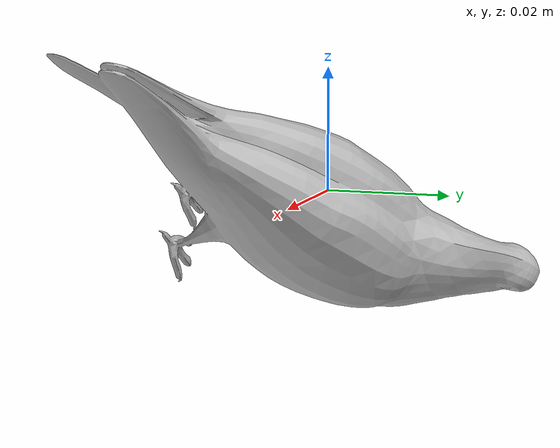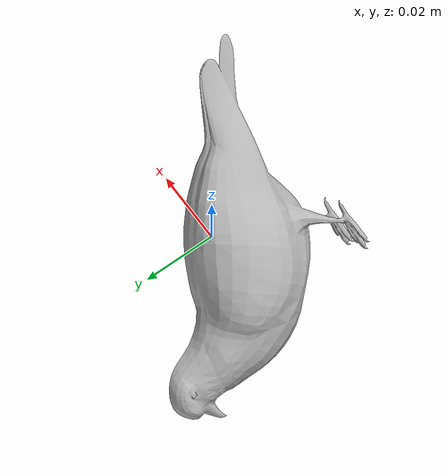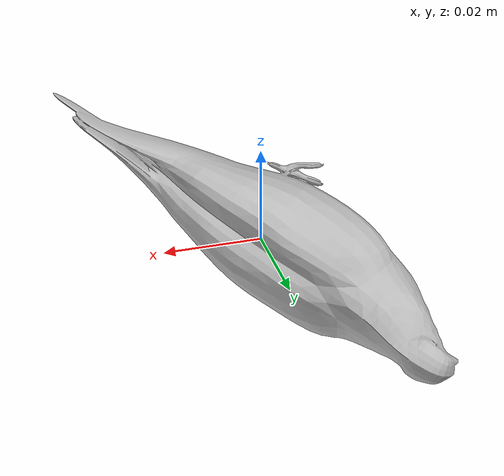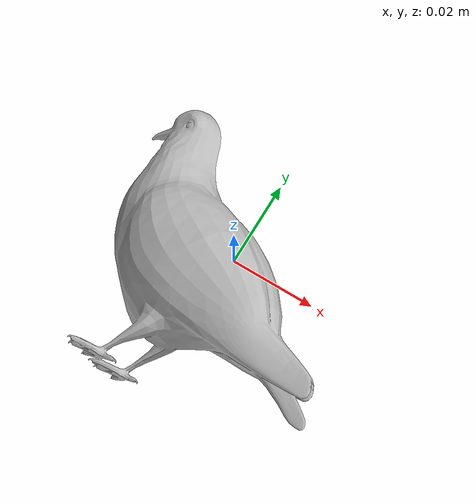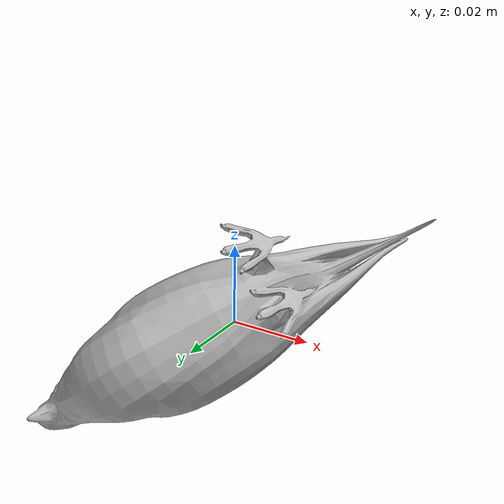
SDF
<?xml version="1.0" encoding="UTF-8"?>
<sdf version="1.9">
  <model name="pigeon_3d">
    <static>true</static>
    <link name="body">
      <!-- GLB (Sketchfab Y_UP) → Gazebo Z_UP: roll=+1.5708; yaw=3.14159 faces -X toward drone -->
      <!-- Scale 1.0 to start — adjust after first launch -->
      <visual name="visual">
        <pose>0 0 0 1.5708 0 3.14159</pose>
        <geometry>
          <mesh>
            <uri>model://pigeon_3d/meshes/pigeon.glb</uri>
            <scale>0.16 0.16 0.16</scale>
          </mesh>
        </geometry>
      </visual>
      <collision name="collision">
        <geometry>
          <box><size>0.32 0.12 0.12</size></box>
        </geometry>
      </collision>
    </link>
  </model>
</sdf>
